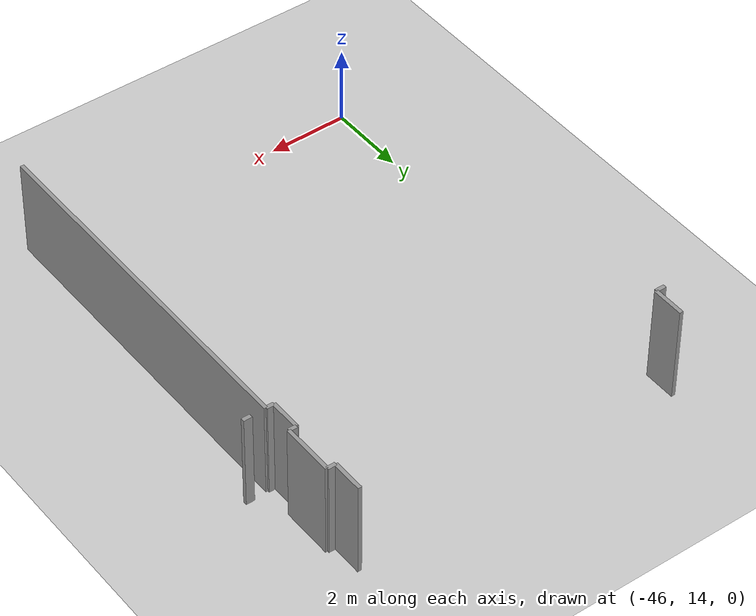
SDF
<sdf version="1.6">
 <world name="default">
  <model name="ground_plane">
   <static>1</static>
   <link name="link">
    <collision name="collision">
     <geometry><plane><normal>0 0 1</normal><size>100 100</size></plane></geometry>
     <surface><friction><ode><mu>100</mu><mu2>50</mu2></ode></friction></surface>
    </collision>
    <visual name="visual">
     <cast_shadows>0</cast_shadows>
     <geometry><plane><normal>0 0 1</normal><size>100 100</size></plane></geometry>
     <material>
      <script><uri>file://media/materials/scripts/gazebo.material</uri><name>Gazebo/Grey</name></script>
     </material>
    </visual>
   </link>
  </model>
  <model name="50045368">
   <static>1</static>
   <link name="Wall_7">
    <collision name="Wall_7_Collision">
     <geometry><box><size>0.246124523507 0.1 2.5</size></box></geometry>
     <pose>0.123062261753 0 1.25 0 0 0</pose>
    </collision>
    <visual name="Wall_7_Visual">
     <pose>0.123062261753 0 1.25 0 0 0</pose>
     <geometry><box><size>0.246124523507 0.1 2.5</size></box></geometry>
     <material>
      <script><uri>file://media/materials/scripts/gazebo.material</uri><name>Gazebo/Grey</name></script>
      <ambient>1 1 1 1</ambient>
     </material>
    </visual>
    <pose>6.27445997459 -0.82706480305 0 0 0 0.0</pose>
   </link>
   <link name="Wall_8">
    <collision name="Wall_8_Collision">
     <geometry><box><size>0.824015247776 0.1 2.5</size></box></geometry>
     <pose>0.412007623888 0 1.25 0 0 0</pose>
    </collision>
    <visual name="Wall_8_Visual">
     <pose>0.412007623888 0 1.25 0 0 0</pose>
     <geometry><box><size>0.824015247776 0.1 2.5</size></box></geometry>
     <material>
      <script><uri>file://media/materials/scripts/gazebo.material</uri><name>Gazebo/Grey</name></script>
      <ambient>1 1 1 1</ambient>
     </material>
    </visual>
    <pose>6.52058449809 -0.82706480305 0 0 0 1.57079632679</pose>
   </link>
   <link name="Wall_9">
    <collision name="Wall_9_Collision">
     <geometry><box><size>0.820330368488 0.1 2.5</size></box></geometry>
     <pose>0.410165184244 0 1.25 0 0 0</pose>
    </collision>
    <visual name="Wall_9_Visual">
     <pose>0.410165184244 0 1.25 0 0 0</pose>
     <geometry><box><size>0.820330368488 0.1 2.5</size></box></geometry>
     <material>
      <script><uri>file://media/materials/scripts/gazebo.material</uri><name>Gazebo/Grey</name></script>
      <ambient>1 1 1 1</ambient>
     </material>
    </visual>
    <pose>14.9540025413 -0.00304955527319 0 0 0 -1.57079632679</pose>
   </link>
   <link name="Wall_10">
    <collision name="Wall_10_Collision">
     <geometry><box><size>0.211817026684 0.1 2.5</size></box></geometry>
     <pose>0.105908513342 0 1.25 0 0 0</pose>
    </collision>
    <visual name="Wall_10_Visual">
     <pose>0.105908513342 0 1.25 0 0 0</pose>
     <geometry><box><size>0.211817026684 0.1 2.5</size></box></geometry>
     <material>
      <script><uri>file://media/materials/scripts/gazebo.material</uri><name>Gazebo/Grey</name></script>
      <ambient>1 1 1 1</ambient>
     </material>
    </visual>
    <pose>14.9540025413 -0.823379923761 0 0 0 0.0</pose>
   </link>
   <link name="Wall_11">
    <collision name="Wall_11_Collision">
     <geometry><box><size>1.3123252859 0.1 2.5</size></box></geometry>
     <pose>0.656162642948 0 1.25 0 0 0</pose>
    </collision>
    <visual name="Wall_11_Visual">
     <pose>0.656162642948 0 1.25 0 0 0</pose>
     <geometry><box><size>1.3123252859 0.1 2.5</size></box></geometry>
     <material>
      <script><uri>file://media/materials/scripts/gazebo.material</uri><name>Gazebo/Grey</name></script>
      <ambient>1 1 1 1</ambient>
     </material>
    </visual>
    <pose>15.165819568 -0.823379923761 0 0 0 -1.57079632679</pose>
   </link>
   <link name="Wall_12">
    <collision name="Wall_12_Collision">
     <geometry><box><size>0.196696315121 0.1 2.5</size></box></geometry>
     <pose>0.0983481575604 0 1.25 0 0 0</pose>
    </collision>
    <visual name="Wall_12_Visual">
     <pose>0.0983481575604 0 1.25 0 0 0</pose>
     <geometry><box><size>0.196696315121 0.1 2.5</size></box></geometry>
     <material>
      <script><uri>file://media/materials/scripts/gazebo.material</uri><name>Gazebo/Grey</name></script>
      <ambient>1 1 1 1</ambient>
     </material>
    </visual>
    <pose>15.165819568 -2.13570520966 0 0 0 3.14159265359</pose>
   </link>
   <link name="Wall_13">
    <collision name="Wall_13_Collision">
     <geometry><box><size>0.790216010165 0.1 2.5</size></box></geometry>
     <pose>0.395108005083 0 1.25 0 0 0</pose>
    </collision>
    <visual name="Wall_13_Visual">
     <pose>0.395108005083 0 1.25 0 0 0</pose>
     <geometry><box><size>0.790216010165 0.1 2.5</size></box></geometry>
     <material>
      <script><uri>file://media/materials/scripts/gazebo.material</uri><name>Gazebo/Grey</name></script>
      <ambient>1 1 1 1</ambient>
     </material>
    </visual>
    <pose>14.9691232529 -2.13570520966 0 0 0 -1.57079632679</pose>
   </link>
   <link name="Wall_14">
    <collision name="Wall_14_Collision">
     <geometry><box><size>0.202160101652 0.1 2.5</size></box></geometry>
     <pose>0.101080050826 0 1.25 0 0 0</pose>
    </collision>
    <visual name="Wall_14_Visual">
     <pose>0.101080050826 0 1.25 0 0 0</pose>
     <geometry><box><size>0.202160101652 0.1 2.5</size></box></geometry>
     <material>
      <script><uri>file://media/materials/scripts/gazebo.material</uri><name>Gazebo/Grey</name></script>
      <ambient>1 1 1 1</ambient>
     </material>
    </visual>
    <pose>14.9691232529 -2.92592121982 0 0 0 0.0</pose>
   </link>
   <link name="Wall_15">
    <collision name="Wall_15_Collision">
     <geometry><box><size>9.2833545108 0.1 2.5</size></box></geometry>
     <pose>4.6416772554 0 1.25 0 0 0</pose>
    </collision>
    <visual name="Wall_15_Visual">
     <pose>4.6416772554 0 1.25 0 0 0</pose>
     <geometry><box><size>9.2833545108 0.1 2.5</size></box></geometry>
     <material>
      <script><uri>file://media/materials/scripts/gazebo.material</uri><name>Gazebo/Grey</name></script>
      <ambient>1 1 1 1</ambient>
     </material>
    </visual>
    <pose>15.1712833545 -2.92592121982 0 0 0 -1.57079632679</pose>
   </link>
   <link name="Wall_36">
    <collision name="Wall_36_Collision">
     <geometry><box><size>0.21918678526 0.1 2.5</size></box></geometry>
     <pose>0.10959339263 0 1.25 0 0 0</pose>
    </collision>
    <visual name="Wall_36_Visual">
     <pose>0.10959339263 0 1.25 0 0 0</pose>
     <geometry><box><size>0.21918678526 0.1 2.5</size></box></geometry>
     <material>
      <script><uri>file://media/materials/scripts/gazebo.material</uri><name>Gazebo/Grey</name></script>
      <ambient>1 1 1 1</ambient>
     </material>
    </visual>
    <pose>15.540660737 -2.925158831 0 0 0 0.0</pose>
   </link>
   <pose>-52.8 25.6383100381 0 0 0 0</pose>
  </model>
 </world>
</sdf>
